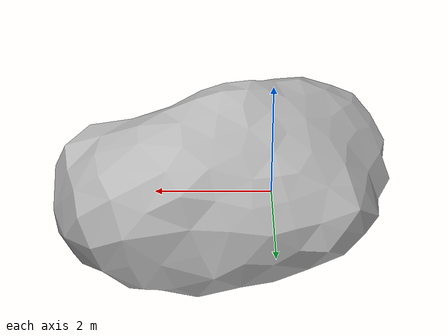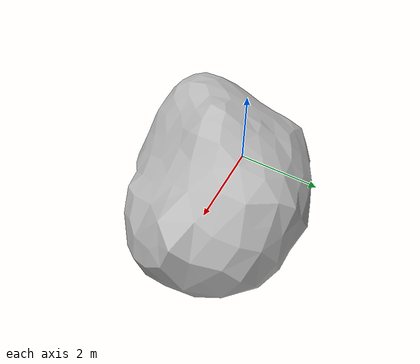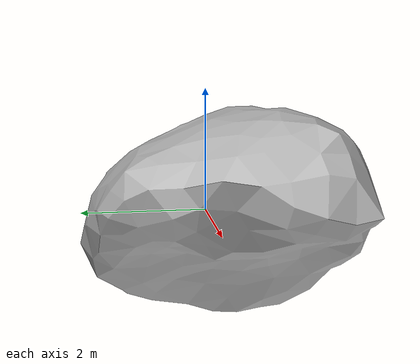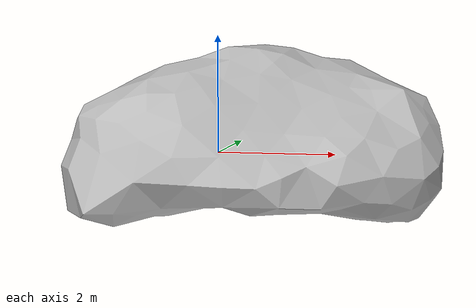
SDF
<sdf version="1.7">
<model name="boulder_1">
    <static>true</static>
    <link name="boulder_1">
        <pose>0 0 0 0 0 0</pose>
        <collision name="boulder_1_collision">
            <geometry>
                <mesh>
                    <uri>model://boulder_1/meshes/boulder_1.dae</uri>
                </mesh>
            </geometry>
        </collision>
        <visual name="boulder_1_visual">
            <geometry>
                <mesh>
                    <uri>model://boulder_1/meshes/boulder_1.dae</uri>
                </mesh>
            </geometry>
        </visual>
    </link>
</model>
</sdf>
